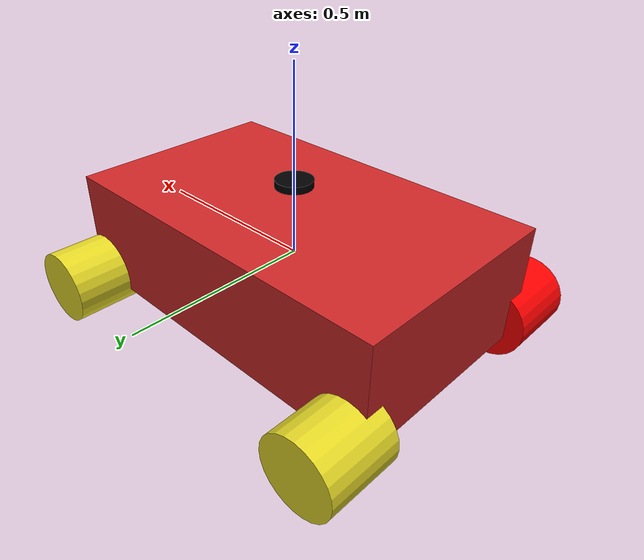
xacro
<?xml version="1.0"?>

<robot name="car" xmlns:xacro="http://www.ros.org/wiki/xacro">

    <!-- Include plugin file -->
    <xacro:include filename="$(find robot_model_pkg)/urdf/car.gazebo"/>

    <!-- Dummy link to hold body -->
    <link name="dummy"/>
    <joint name="dummy_joint" type="fixed">
        <parent link="dummy"/>
        <child link="body_link"/>
    </joint>

    <!-- Body link -->
    <link name="body_link">
        <visual>
            <origin xyz="0.0 0.0 0.0" rpy="0.0 0.0 0.0"/>
            <geometry>
                <box size="1 0.6 0.3"/>
            </geometry>
        </visual>

        <inertial>
            <origin xyz="0.0 0.0 0.0" rpy="0.0 0.0 0.0"/>
            <mass value="500"/>
            <inertia
                ixx="0.014930555555555554"
                ixy="0.0"
                ixz="0.0"
                iyy="0.0328125"
                iyz="0.0"
                izz="0.0578125"/>
        </inertial>

        <collision>
            <origin xyz="0.0 0.0 0.0" rpy="0.0 0.0 0.0"/>
            <geometry>
                <box size="1 0.6 0.3"/>
            </geometry>
        </collision>
    </link>

    <!-- Wheel template -->
    <!-- wheel_mass = 22, Izz = 0.00850559673, Ixx = Iyy = 0.00667468664 -->

    <!-- Back right wheel -->
    <joint name="wheel1_joint" type="continuous">
        <parent link="body_link"/>
        <child link="wheel1_link"/>
        <origin xyz="-0.45 -0.35 -0.12" rpy="0.0 0.0 0.0"/>
        <axis xyz="0.0 1.0 0.0"/>
        <limit effort="1000.0" velocity="500"/>
        <dynamics damping="1" friction="1"/>
    </joint>

    <link name="wheel1_link">
        <visual>
            <origin xyz="0 0 0" rpy="1.570795 0 0"/>
            <geometry>
                <cylinder radius="0.1" length="0.2"/>
            </geometry>
            <material name="red">
                <color rgba="1 0 0 1"/>
            </material>
        </visual>
        <collision>
            <origin xyz="0 0 0" rpy="1.570795 0 0"/>
            <geometry>
                <cylinder radius="0.1" length="0.2"/>
            </geometry>
        </collision>
        <inertial>
            <origin rpy="0 0 0" xyz="0 0 0"/>
            <mass value="2"/>
            <inertia ixx="0.00667468664" ixy="0.0" ixz="0.0" iyy="0.00667468664" izz="0.00850559673" iyz="0"/>
        </inertial>
    </link>

    <!-- Back left wheel -->
    <joint name="wheel2_joint" type="continuous">
        <parent link="body_link"/>
        <child link="wheel2_link"/>
        <origin xyz="-0.45 0.35 -0.12" rpy="0.0 0.0 0.0"/>
        <axis xyz="0 1 0"/>
        <limit effort="1000.0" velocity="500"/>
        <dynamics damping="1" friction="1"/>
    </joint>

    <link name="wheel2_link">
        <visual>
            <origin xyz="0 0 0" rpy="1.570795 0 0"/>
            <geometry>
                <cylinder radius="0.1" length="0.2"/>
            </geometry>
        </visual>
        <collision>
            <origin xyz="0 0 0" rpy="1.570795 0 0"/>
            <geometry>
                <cylinder radius="0.1" length="0.2"/>
            </geometry>
        </collision>
        <inertial>
            <origin rpy="0 0 0" xyz="0 0 0"/>
            <mass value="2"/>
            <inertia ixx="0.00667468664" ixy="0.0" ixz="0.0" iyy="0.00667468664" izz="0.00850559673" iyz="0"/>
        </inertial>
    </link>

    <!-- Front right wheel -->
    <joint name="wheel3_joint" type="continuous">
        <parent link="body_link"/>
        <child link="wheel3_link"/>
        <origin xyz="0.45 -0.35 -0.12" rpy="0.0 0.0 0.0"/>
        <axis xyz="0 1 0"/>
        <limit effort="1000.0" velocity="500"/>
        <dynamics damping="1" friction="1"/>
    </joint>

    <link name="wheel3_link">
        <visual>
            <origin xyz="0 0 0" rpy="1.570795 0 0"/>
            <geometry>
                <cylinder radius="0.1" length="0.2"/>
            </geometry>
        </visual>
        <collision>
            <origin xyz="0 0 0" rpy="1.570795 0 0"/>
            <geometry>
                <cylinder radius="0.1" length="0.2"/>
            </geometry>
        </collision>
        <inertial>
            <origin rpy="0 0 0" xyz="0 0 0"/>
            <mass value="2"/>
            <inertia ixx="0.00667468664" ixy="0.0" ixz="0.0" iyy="0.00667468664" izz="0.00850559673" iyz="0"/>
        </inertial>
    </link>

    <!-- Front left wheel -->
    <joint name="wheel4_joint" type="continuous">
        <parent link="body_link"/>
        <child link="wheel4_link"/>
        <origin xyz="0.45 0.35 -0.12" rpy="0.0 0.0 0.0"/>
        <axis xyz="0 1 0"/>
        <limit effort="1000.0" velocity="500"/>
        <dynamics damping="1" friction="1"/>
    </joint>

    <link name="wheel4_link">
        <visual>
            <origin xyz="0 0 0" rpy="1.570795 0 0"/>
            <geometry>
                <cylinder radius="0.1" length="0.2"/>
            </geometry>
        </visual>
        <collision>
            <origin xyz="0 0 0" rpy="1.570795 0 0"/>
            <geometry>
                <cylinder radius="0.1" length="0.2"/>
            </geometry>
        </collision>
        <inertial>
            <origin rpy="0 0 0" xyz="0 0 0"/>
            <mass value="2"/>
            <inertia ixx="0.00667468664" ixy="0.0" ixz="0.0" iyy="0.00667468664" izz="0.00850559673" iyz="0"/>
        </inertial>
    </link>

    <!-- LiDAR sensor link -->
    <joint name="lidar_joint" type="fixed">
        <parent link="body_link"/>
        <child link="lidar_link"/>
        <!-- Gắn trên nóc xe, điều chỉnh cao độ và vị trí phù hợp -->
        <origin xyz="0 0 0.2" rpy="0 0 0"/>
    </joint>

    <link name="lidar_link">
    <visual>
        <origin xyz="0 0 0" rpy="0 0 0"/>
        <geometry>
        <cylinder radius="0.05" length="0.02"/>
        </geometry>
        <material name="black">
        <color rgba="0 0 0 1"/>
        </material>
    </visual>
    </link>

</robot>
